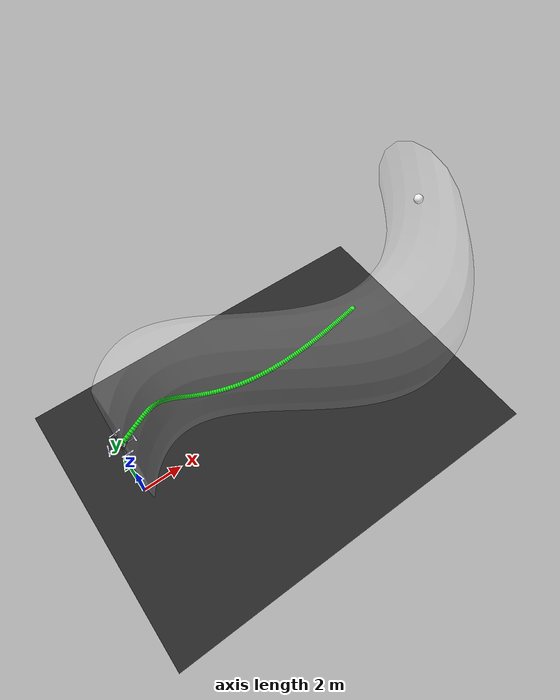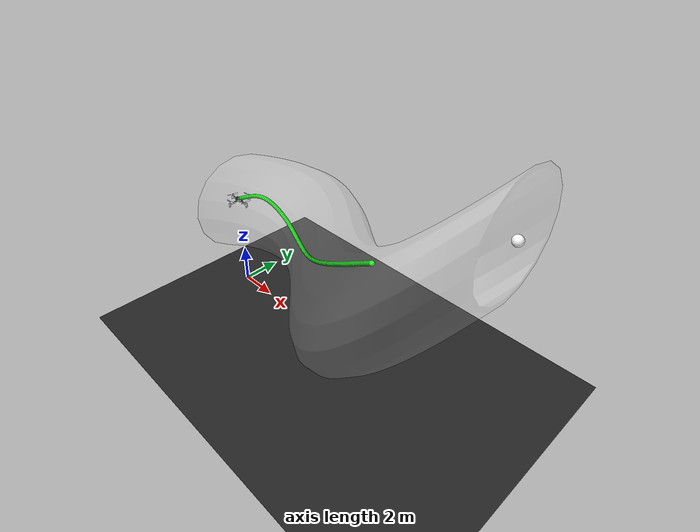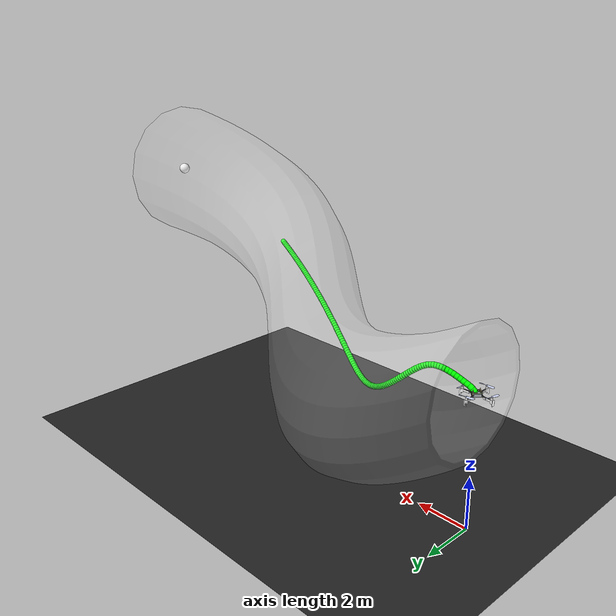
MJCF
<mujoco model="CF2 scene">
  <include file="cf2.xml" />

  <statistic center="0 0 0.1" extent="0.2" meansize=".05" />

  <visual>

    <rgba haze="0.15 0.25 0.35 0" />
    <global azimuth="-20" elevation="-20" ellipsoidinertia="true" />
    <map zfar="1000" />
  </visual>

  <asset>
    <mesh name="tunnel" file="tube_thick.obj" scale="1.0 1.0 1.0" />
    <texture type="skybox" builtin="gradient" rgb1="0.3 0.5 0.7" rgb2="0 0 0" width="512" height="3072" />

    <texture type="2d" name="groundplane" builtin="checker" mark="edge" rgb1="0.1 0.1 0.1" rgb2="0.2 0.2 0.2" markrgb="0.8 0.8 0.8" width="300" height="300" />

    <material name="groundplane" texture="groundplane" texuniform="true" texrepeat="5 5" reflectance="0.0" />
  </asset>

  <worldbody>
    <light diffuse="1 1 1" ambient="1 1 1" pos="0 0 100" dir="0 0 -1" directional="false" castshadow="false" />

    <geom name="floor" size="0 0 0.05" type="plane" material="groundplane" />
    <site name="x_axis" size="0.005" type="cylinder" fromto="0 0 0 1 0 0" rgba="1 0 0 1" />
    <site name="y_axis" size="0.005" type="cylinder" fromto="0 0 0 0 1 0" rgba="0 1 0 1" />
    <site name="z_axis" size="0.005" type="cylinder" fromto="0 0 0 0 0 1" rgba="0 0 1 1" />

    <site name="target" size="0.2" type="sphere" pos="15 0 10" rgba="1 1 1 1" />

    <camera name="cam_aux" pos="-3.429 -18.876 13.649" xyaxes="0.874 -0.486 -0.000 0.179 0.321 0.930" />
    <camera name="cam_traj_1" pos="-7.863 -0.826 23.122" xyaxes="0.020 -1.000 0.000 0.737 0.014 0.676" />
    <camera name="cam_traj_2" pos="7.041 -14.560 20.718" xyaxes="1.000 -0.031 -0.000 0.021 0.691 0.722" />
    <camera name="cam_traj_3" pos="-11.538 -0.602 8.690" xyaxes="0.046 -0.999 -0.000 0.161 0.007 0.987" />

    <body name="tunnel" pos="0.0 0.0 0.0" quat="1 0 0 0">
         <geom name="tunnel" type="mesh" mesh="tunnel" pos="-0.0 0.0 0.029" quat="1 0 0 0" rgba="1 1 1 0.05" />
    </body>

  <body name="trajectory_0" pos="0 0 0"><geom type="capsule" fromto="0.00437318461997022 0.0007496481513081153 5.041824115472996 0.035507787889569806 0.0065076702425278425 5.1121089997573925" size="0.1" rgba="0 1 0.0 1" /><geom type="capsule" fromto="0.035507787889569806 0.0065076702425278425 5.1121089997573925 0.1210112411277036 0.020053517274669783 5.194186137735673" size="0.1" rgba="0 1 0.0 1" /><geom type="capsule" fromto="0.1210112411277036 0.020053517274669783 5.194186137735673 0.24191192169104436 0.038361705149055514 5.269635358225623" size="0.1" rgba="0 1 0.0 1" /><geom type="capsule" fromto="0.24191192169104436 0.038361705149055514 5.269635358225623 0.371237064352328 0.06046459106241012 5.329949473255537" size="0.1" rgba="0 1 0.0 1" /><geom type="capsule" fromto="0.371237064352328 0.06046459106241012 5.329949473255537 0.4960559123805818 0.08575803235701035 5.39042847048231" size="0.1" rgba="0 1 0.0 1" /><geom type="capsule" fromto="0.4960559123805818 0.08575803235701035 5.39042847048231 0.6126201672110702 0.11238564114516242 5.447935754945297" size="0.1" rgba="0 1 0.0 1" /><geom type="capsule" fromto="0.6126201672110702 0.11238564114516242 5.447935754945297 0.7246534858527274 0.13933713829521055 5.500546023519756" size="0.1" rgba="0 1 0.0 1" /><geom type="capsule" fromto="0.7246534858527274 0.13933713829521055 5.500546023519756 0.8343733132124811 0.1663537347999242 5.547736569716039" size="0.1" rgba="0 1 0.0 1" /><geom type="capsule" fromto="0.8343733132124811 0.1663537347999242 5.547736569716039 0.9410720344646984 0.1935353068848628 5.588925691976844" size="0.1" rgba="0 1 0.0 1" /><geom type="capsule" fromto="0.9410720344646984 0.1935353068848628 5.588925691976844 1.0436027114296775 0.221088251164813 5.623661915483553" size="0.1" rgba="0 1 0.0 1" /><geom type="capsule" fromto="1.0436027114296775 0.221088251164813 5.623661915483553 1.1415208374446724 0.24918003639943764 5.65143417859452" size="0.1" rgba="0 1 0.0 1" /><geom type="capsule" fromto="1.1415208374446724 0.24918003639943764 5.65143417859452 1.234771626297441 0.27791061495549507 5.671529936545685" size="0.1" rgba="0 1 0.0 1" /><geom type="capsule" fromto="1.234771626297441 0.27791061495549507 5.671529936545685 1.323379305785619 0.307327491582333 5.6833294686906015" size="0.1" rgba="0 1 0.0 1" /><geom type="capsule" fromto="1.323379305785619 0.307327491582333 5.6833294686906015 1.4074288443399736 0.3374201497584872 5.686475153358069" size="0.1" rgba="0 1 0.0 1" /><geom type="capsule" fromto="1.4074288443399736 0.3374201497584872 5.686475153358069 1.487131799655383 0.36810395500107257 5.680870640505144" size="0.1" rgba="0 1 0.0 1" /><geom type="capsule" fromto="1.487131799655383 0.36810395500107257 5.680870640505144 1.5628358730730079 0.3992172474456516 5.666622760258016" size="0.1" rgba="0 1 0.0 1" /><geom type="capsule" fromto="1.5628358730730079 0.3992172474456516 5.666622760258016 1.6350119538934433 0.4305420072749385 5.6441209133965815" size="0.1" rgba="0 1 0.0 1" /><geom type="capsule" fromto="1.6350119538934433 0.4305420072749385 5.6441209133965815 1.7042877161156027 0.46184551819596065 5.614424281223033" size="0.1" rgba="0 1 0.0 1" /><geom type="capsule" fromto="1.7042877161156027 0.46184551819596065 5.614424281223033 1.771317339765524 0.49288495069435473 5.578819753420225" size="0.1" rgba="0 1 0.0 1" /><geom type="capsule" fromto="1.771317339765524 0.49288495069435473 5.578819753420225 1.8366512493963505 0.5234109300044573 5.5383226369037" size="0.1" rgba="0 1 0.0 1" /><geom type="capsule" fromto="1.8366512493963505 0.5234109300044573 5.5383226369037 1.9007446660616139 0.5531888551284555 5.4937818176106665" size="0.1" rgba="0 1 0.0 1" /><geom type="capsule" fromto="1.9007446660616139 0.5531888551284555 5.4937818176106665 1.963975452457065 0.5820050468092467 5.445931700336022" size="0.1" rgba="0 1 0.0 1" /><geom type="capsule" fromto="1.963975452457065 0.5820050468092467 5.445931700336022 2.0266566119722698 0.6096663593815314 5.3954029030314965" size="0.1" rgba="0 1 0.0 1" /><geom type="capsule" fromto="2.0266566119722698 0.6096663593815314 5.3954029030314965 2.089047277373054 0.6359987975395142 5.342740141638795" size="0.1" rgba="0 1 0.0 1" /><geom type="capsule" fromto="2.089047277373054 0.6359987975395142 5.342740141638795 2.1513615539172495 0.6608456558822791 5.2884174843528555" size="0.1" rgba="0 1 0.0 1" /><geom type="capsule" fromto="2.1513615539172495 0.6608456558822791 5.2884174843528555 2.213775937508471 0.6840655063137996 5.232849785075494" size="0.1" rgba="0 1 0.0 1" /><geom type="capsule" fromto="2.213775937508471 0.6840655063137996 5.232849785075494 2.2764358460537903 0.7055301867489743 5.176401769223376" size="0.1" rgba="0 1 0.0 1" /><geom type="capsule" fromto="2.2764358460537903 0.7055301867489743 5.176401769223376 2.3394613922499325 0.7251228028106721 5.119395539131308" size="0.1" rgba="0 1 0.0 1" /><geom type="capsule" fromto="2.3394613922499325 0.7251228028106721 5.119395539131308 2.402952430536104 0.7427357135498209 5.062117026149087" size="0.1" rgba="0 1 0.0 1" /><geom type="capsule" fromto="2.402952430536104 0.7427357135498209 5.062117026149087 2.4669929102512618 0.7582684624756416 5.004821694491295" size="0.1" rgba="0 1 0.0 1" /><geom type="capsule" fromto="2.4669929102512618 0.7582684624756416 5.004821694491295 2.5316545931243093 0.7716256122341543 4.947739679440857" size="0.1" rgba="0 1 0.0 1" /><geom type="capsule" fromto="2.5316545931243093 0.7716256122341543 4.947739679440857 2.5970002151103486 0.7827144351776266 4.891080486664054" size="0.1" rgba="0 1 0.0 1" /><geom type="capsule" fromto="2.5970002151103486 0.7827144351776266 4.891080486664054 2.6630861845446376 0.7914423996175979 4.83503735787985" size="0.1" rgba="0 1 0.0 1" /><geom type="capsule" fromto="2.6630861845446376 0.7914423996175979 4.83503735787985 2.7299649133509503 0.797714370982354 4.779791405493137" size="0.1" rgba="0 1 0.0 1" /><geom type="capsule" fromto="2.7299649133509503 0.797714370982354 4.779791405493137 2.7976868793336878 0.8014294157437495 4.725515628681751" size="0.1" rgba="0 1 0.0 1" /><geom type="capsule" fromto="2.7976868793336878 0.8014294157437495 4.725515628681751 2.8663024964801775 0.8024795699625173 4.672379013913572" size="0.1" rgba="0 1 0.0 1" /><geom type="capsule" fromto="2.8663024964801775 0.8024795699625173 4.672379013913572 2.935863450519469 0.800788116932673 4.620551452561628" size="0.1" rgba="0 1 0.0 1" /><geom type="capsule" fromto="2.935863450519469 0.800788116932673 4.620551452561628 3.006422797197105 0.7963600003797384 4.5702055132600785" size="0.1" rgba="0 1 0.0 1" /><geom type="capsule" fromto="3.006422797197105 0.7963600003797384 4.5702055132600785 3.0780339691107277 0.7892730419774273 4.521514766460066" size="0.1" rgba="0 1 0.0 1" /><geom type="capsule" fromto="3.0780339691107277 0.7892730419774273 4.521514766460066 3.150749473419002 0.779646751415472 4.4746535216683885" size="0.1" rgba="0 1 0.0 1" /><geom type="capsule" fromto="3.150749473419002 0.779646751415472 4.4746535216683885 3.224620556198447 0.7676106287434328 4.429798274170613" size="0.1" rgba="0 1 0.0 1" /><geom type="capsule" fromto="3.224620556198447 0.7676106287434328 4.429798274170613 3.299698047806389 0.7532826212276539 4.387130431678437" size="0.1" rgba="0 1 0.0 1" /><geom type="capsule" fromto="3.299698047806389 0.7532826212276539 4.387130431678437 3.3760336059942406 0.7367588520405666 4.3468393336436195" size="0.1" rgba="0 1 0.0 1" /><geom type="capsule" fromto="3.3760336059942406 0.7367588520405666 4.3468393336436195 3.4536807431033387 0.718111299658739 4.309124962611168" size="0.1" rgba="0 1 0.0 1" /><geom type="capsule" fromto="3.4536807431033387 0.718111299658739 4.309124962611168 3.5326954855220394 0.6973896713811222 4.274200351065008" size="0.1" rgba="0 1 0.0 1" /><geom type="capsule" fromto="3.5326954855220394 0.6973896713811222 4.274200351065008 3.6131367404775454 0.674624819125306 4.242293887065429" size="0.1" rgba="0 1 0.0 1" /><geom type="capsule" fromto="3.6131367404775454 0.674624819125306 4.242293887065429 3.695066465464729 0.6498322818319753 4.213651669962898" size="0.1" rgba="0 1 0.0 1" /><geom type="capsule" fromto="3.695066465464729 0.6498322818319753 4.213651669962898 3.7785485266968464 0.6230156010294172 4.188536114829531" size="0.1" rgba="0 1 0.0 1" /><geom type="capsule" fromto="3.7785485266968464 0.6230156010294172 4.188536114829531 3.8636223134244765 0.5941735577749006 4.167142180317873" size="0.1" rgba="0 1 0.0 1" /><geom type="capsule" fromto="3.8636223134244765 0.5941735577749006 4.167142180317873 3.950288227969581 0.5633064156249414 4.14955626414783" size="0.1" rgba="0 1 0.0 1" /><geom type="capsule" fromto="3.950288227969581 0.5633064156249414 4.14955626414783 4.038536984676037 0.53041716649107 4.135861997675917" size="0.1" rgba="0 1 0.0 1" /><geom type="capsule" fromto="4.038536984676037 0.53041716649107 4.135861997675917 4.128352709302968 0.49551938306605986 4.12616066314445" size="0.1" rgba="0 1 0.0 1" /><geom type="capsule" fromto="4.128352709302968 0.49551938306605986 4.12616066314445 4.21970375299119 0.45864700663116525 4.120550632229399" size="0.1" rgba="0 1 0.0 1" /><geom type="capsule" fromto="4.21970375299119 0.45864700663116525 4.120550632229399 4.312536504282794 0.41986212912277415 4.119113669226877" size="0.1" rgba="0 1 0.0 1" /><geom type="capsule" fromto="4.312536504282794 0.41986212912277415 4.119113669226877 4.406770747044694 0.3792612538771082 4.12190240263572" size="0.1" rgba="0 1 0.0 1" /><geom type="capsule" fromto="4.406770747044694 0.3792612538771082 4.12190240263572 4.5022968687379885 0.3369796767885485 4.128928499504876" size="0.1" rgba="0 1 0.0 1" /><geom type="capsule" fromto="4.5022968687379885 0.3369796767885485 4.128928499504876 4.598975907131344 0.29319292641473194 4.140153487893752" size="0.1" rgba="0 1 0.0 1" /><geom type="capsule" fromto="4.598975907131344 0.29319292641473194 4.140153487893752 4.6966429712028 0.24811420255442662 4.15548413528755" size="0.1" rgba="0 1 0.0 1" /><geom type="capsule" fromto="4.6966429712028 0.24811420255442662 4.15548413528755 4.795113866623792 0.2019873746921961 4.174773408232686" size="0.1" rgba="0 1 0.0 1" /><geom type="capsule" fromto="4.795113866623792 0.2019873746921961 4.174773408232686 4.894194071429243 0.15507611809804034 4.1978270272251965" size="0.1" rgba="0 1 0.0 1" /><geom type="capsule" fromto="4.894194071429243 0.15507611809804034 4.1978270272251965 4.993688519007771 0.10765082966444853 4.224414361981719" size="0.1" rgba="0 1 0.0 1" /><geom type="capsule" fromto="4.993688519007771 0.10765082966444853 4.224414361981719 5.0934104257584405 0.05997569990425653 4.254281277263567" size="0.1" rgba="0 1 0.0 1" /><geom type="capsule" fromto="5.0934104257584405 0.05997569990425653 4.254281277263567 5.193187826902025 0.012298010385167986 4.2871622188729965" size="0.1" rgba="0 1 0.0 1" /><geom type="capsule" fromto="5.193187826902025 0.012298010385167986 4.2871622188729965 5.29286743248457 -0.03515933798533391 4.322790089962683" size="0.1" rgba="0 1 0.0 1" /><geom type="capsule" fromto="5.29286743248457 -0.03515933798533391 4.322790089962683 5.392316132909675 -0.0822019411914488 4.360903633638507" size="0.1" rgba="0 1 0.0 1" /><geom type="capsule" fromto="5.392316132909675 -0.0822019411914488 4.360903633638507 5.491420742825816 -0.1286651198425606 4.4012523881226695" size="0.1" rgba="0 1 0.0 1" /><geom type="capsule" fromto="5.491420742825816 -0.1286651198425606 4.4012523881226695 5.590086652242905 -0.1744130441980158 4.443599698990014" size="0.1" rgba="0 1 0.0 1" /><geom type="capsule" fromto="5.590086652242905 -0.1744130441980158 4.443599698990014 5.688235925822523 -0.2193365527578659 4.487724343922756" size="0.1" rgba="0 1 0.0 1" /><geom type="capsule" fromto="5.688235925822523 -0.2193365527578659 4.487724343922756 5.785805206813993 -0.2633503006664429 4.533421194337305" size="0.1" rgba="0 1 0.0 1" /><geom type="capsule" fromto="5.785805206813993 -0.2633503006664429 4.533421194337305 5.882743640989074 -0.30638967843176695 4.580501216637712" size="0.1" rgba="0 1 0.0 1" /><geom type="capsule" fromto="5.882743640989074 -0.30638967843176695 4.580501216637712 5.979010941289136 -0.3484077757589116 4.628791028480523" size="0.1" rgba="0 1 0.0 1" /><geom type="capsule" fromto="5.979010941289136 -0.3484077757589116 4.628791028480523 6.074575652661751 -0.38937254732029725 4.67813216734252" size="0.1" rgba="0 1 0.0 1" /><geom type="capsule" fromto="6.074575652661751 -0.38937254732029725 4.67813216734252 6.16941363762709 -0.4292642598825974 4.728380188212185" size="0.1" rgba="0 1 0.0 1" /><geom type="capsule" fromto="6.16941363762709 -0.4292642598825974 4.728380188212185 6.263506779479324 -0.4680732509246699 4.779403675408562" size="0.1" rgba="0 1 0.0 1" /><geom type="capsule" fromto="6.263506779479324 -0.4680732509246699 4.779403675408562 6.356841887190102 -0.5057979982576818 4.831083228088039" size="0.1" rgba="0 1 0.0 1" /><geom type="capsule" fromto="6.356841887190102 -0.5057979982576818 4.831083228088039 6.449409780256615 -0.5424434821645798 4.8833104594360774" size="0.1" rgba="0 1 0.0 1" /><geom type="capsule" fromto="6.449409780256615 -0.5424434821645798 4.8833104594360774 6.541204530021944 -0.5780198122027072 4.9359870351244055" size="0.1" rgba="0 1 0.0 1" /><geom type="capsule" fromto="6.541204530021944 -0.5780198122027072 4.9359870351244055 6.632222834561533 -0.6125410871286601 4.989023766340185" size="0.1" rgba="0 1 0.0 1" /><geom type="capsule" fromto="6.632222834561533 -0.6125410871286601 4.989023766340185 6.72246350602255 -0.6460244562297706 5.042339765545088" size="0.1" rgba="0 1 0.0 1" /><geom type="capsule" fromto="6.72246350602255 -0.6460244562297706 5.042339765545088 6.811927051679955 -0.6784893521579255 5.095861668248308" size="0.1" rgba="0 1 0.0 1" /><geom type="capsule" fromto="6.811927051679955 -0.6784893521579255 5.095861668248308 6.900615332513691 -0.7099568681693089 5.149522920830001" size="0.1" rgba="0 1 0.0 1" /><geom type="capsule" fromto="6.900615332513691 -0.7099568681693089 5.149522920830001 6.988531285557377 -0.740449255869689 5.2032631323563665" size="0.1" rgba="0 1 0.0 1" /><geom type="capsule" fromto="6.988531285557377 -0.740449255869689 5.2032631323563665 7.075678698490011 -0.7699895227879838 5.257027487043712" size="0.1" rgba="0 1 0.0 1" /><geom type="capsule" fromto="7.075678698490011 -0.7699895227879838 5.257027487043712 7.162062026891838 -0.7986011121461137 5.310766213311224" size="0.1" rgba="0 1 0.0 1" /><geom type="capsule" fromto="7.162062026891838 -0.7986011121461137 5.310766213311224 7.247686246260514 -0.8263076499552571 5.364434105033382" size="0.1" rgba="0 1 0.0 1" /><geom type="capsule" fromto="7.247686246260514 -0.8263076499552571 5.364434105033382 7.332556732299516 -0.8531327470048441 5.417990090534727" size="0.1" rgba="0 1 0.0 1" /><geom type="capsule" fromto="7.332556732299516 -0.8531327470048441 5.417990090534727 7.416679164167856 -0.8790998454124984 5.471396844971335" size="0.1" rgba="0 1 0.0 1" /><geom type="capsule" fromto="7.416679164167856 -0.8790998454124984 5.471396844971335 7.5000594463739745 -0.9042321012092869 5.52462044194408" size="0.1" rgba="0 1 0.0 1" /><geom type="capsule" fromto="7.5000594463739745 -0.9042321012092869 5.52462044194408 7.582703645810666 -0.92855229596219 5.577630040454724" size="0.1" rgba="0 1 0.0 1" /><geom type="capsule" fromto="7.582703645810666 -0.92855229596219 5.577630040454724 7.664617941073722 -0.9520827716979395 5.630397603619142" size="0.1" rgba="0 1 0.0 1" /><geom type="capsule" fromto="7.664617941073722 -0.9520827716979395 5.630397603619142 7.745808581735534 -0.9748453844384021 5.682897645852746" size="0.1" rgba="0 1 0.0 1" /><geom type="capsule" fromto="7.745808581735534 -0.9748453844384021 5.682897645852746 7.8262818556863465 -0.9968614725285208 5.735107005537971" size="0.1" rgba="0 1 0.0 1" /><geom type="capsule" fromto="7.8262818556863465 -0.9968614725285208 5.735107005537971 7.906044063017469 -1.0181518366572235 5.787004640476394" size="0.1" rgba="0 1 0.0 1" /><geom type="capsule" fromto="7.906044063017469 -1.0181518366572235 5.787004640476394 7.985101495210981 -1.038736729061911 5.838571443702417" size="0.1" rgba="0 1 0.0 1" /><geom type="capsule" fromto="7.985101495210981 -1.038736729061911 5.838571443702417 8.06346041863315 -1.0586358498894248 5.889790077485702" size="0.1" rgba="0 1 0.0 1" /><geom type="capsule" fromto="8.06346041863315 -1.0586358498894248 5.889790077485702 8.141127061517134 -1.0778683490798149 5.9406448235788405" size="0.1" rgba="0 1 0.0 1" /><geom type="capsule" fromto="8.141127061517134 -1.0778683490798149 5.9406448235788405 8.218107603773715 -1.0964528324596459 5.991121447975884" size="0.1" rgba="0 1 0.0 1" /><geom type="capsule" fromto="8.218107603773715 -1.0964528324596459 5.991121447975884 8.29440816909323 -1.1144073709922 6.041207078636496" size="0.1" rgba="0 1 0.0 1" /><geom type="capsule" fromto="8.29440816909323 -1.1144073709922 6.041207078636496 8.370034818902544 -1.1317495123435715 6.090890094800454" size="0.1" rgba="0 1 0.0 1" /><geom type="capsule" fromto="8.370034818902544 -1.1317495123435715 6.090890094800454 8.444993547822593 -1.148496294095308 6.140160026669218" size="0.1" rgba="0 1 0.0 1" /><geom type="capsule" fromto="8.444993547822593 -1.148496294095308 6.140160026669218 8.5192902803382 -1.164664258073265 6.189007464367052" size="0.1" rgba="0 1 0.0 1" /><geom type="capsule" fromto="8.5192902803382 -1.164664258073265 6.189007464367052 8.592930868445604 -1.1802694653747567 6.237423975214935" size="0.1" rgba="0 1 0.0 1" /><geom type="capsule" fromto="8.592930868445604 -1.1802694653747567 6.237423975214935 8.665921090086814 -1.1953275117668498 6.28540202845797" size="0.1" rgba="0 1 0.0 1" /><geom type="capsule" fromto="8.665921090086814 -1.1953275117668498 6.28540202845797 8.738266648215419 -1.2098535432017798 6.3329349266822685" size="0.1" rgba="0 1 0.0 1" /><geom type="capsule" fromto="8.738266648215419 -1.2098535432017798 6.3329349266822685 8.809973170367384 -1.2238622712543101 6.380016743241852" size="0.1" rgba="0 1 0.0 1" /><geom type="capsule" fromto="8.809973170367384 -1.2238622712543101 6.380016743241852 8.881046208633844 -1.2373679883330515 6.4266422650909725" size="0.1" rgba="0 1 0.0 1" /><geom type="capsule" fromto="8.881046208633844 -1.2373679883330515 6.4266422650909725 8.951491239952109 -1.2503845825555335 6.472806940483588" size="0.1" rgba="0 1 0.0 1" /><geom type="capsule" fromto="8.951491239952109 -1.2503845825555335 6.472806940483588 9.021313666646712 -1.2629255522069496 6.518506831060461" size="0.1" rgba="0 1 0.0 1" /><geom type="capsule" fromto="9.021313666646712 -1.2629255522069496 6.518506831060461 9.090518817165103 -1.2750040197264325 6.563738567896308" size="0.1" rgba="0 1 0.0 1" /><geom type="capsule" fromto="9.090518817165103 -1.2750040197264325 6.563738567896308 9.159111946962982 -1.2866327451836492 6.608499311125492" size="0.1" rgba="0 1 0.0 1" /><geom type="capsule" fromto="9.159111946962982 -1.2866327451836492 6.608499311125492 9.227098239502814 -1.2978241392233922 6.652786712805495" size="0.1" rgba="0 1 0.0 1" /><geom type="capsule" fromto="9.227098239502814 -1.2978241392233922 6.652786712805495 9.294482807336022 -1.3085902754674745 6.696598882713528" size="0.1" rgba="0 1 0.0 1" /><geom type="capsule" fromto="9.294482807336022 -1.3085902754674745 6.696598882713528 9.361270693245057 -1.318942902372241 6.739934356803636" size="0.1" rgba="0 1 0.0 1" /><geom type="capsule" fromto="9.361270693245057 -1.318942902372241 6.739934356803636 9.42746687142619 -1.3288934545469147 6.78279206808007" size="0.1" rgba="0 1 0.0 1" /><geom type="capsule" fromto="9.42746687142619 -1.3288934545469147 6.78279206808007 9.493076248697742 -1.3384530635432128 6.82517131966785" size="0.1" rgba="0 1 0.0 1" /><geom type="capsule" fromto="9.493076248697742 -1.3384530635432128 6.82517131966785 9.558103665721532 -1.3476325681305386 6.867071759883844" size="0.1" rgba="0 1 0.0 1" /><geom type="capsule" fromto="9.558103665721532 -1.3476325681305386 6.867071759883844 9.62255389822795 -1.3564425240738611 6.908493359131567" size="0.1" rgba="0 1 0.0 1" /><geom type="capsule" fromto="9.62255389822795 -1.3564425240738611 6.908493359131567 9.686431658237098 -1.3648932134333478 6.949436388460578" size="0.1" rgba="0 1 0.0 1" /><geom type="capsule" fromto="9.686431658237098 -1.3648932134333478 6.949436388460578 9.749741595270198 -1.3729946534061015 6.9899013996471195" size="0.1" rgba="0 1 0.0 1" /><geom type="capsule" fromto="9.749741595270198 -1.3729946534061015 6.9899013996471195 9.812488297546862 -1.3807566047311142 7.029889206666678" size="0.1" rgba="0 1 0.0 1" /><geom type="capsule" fromto="9.812488297546862 -1.3807566047311142 7.029889206666678 9.874676293164915 -1.3881885796789029 7.06940086844167" size="0.1" rgba="0 1 0.0 1" /><geom type="capsule" fromto="9.874676293164915 -1.3881885796789029 7.06940086844167 9.936310051260447 -1.3952998496473248 7.108437672758633" size="0.1" rgba="0 1 0.0 1" /><geom type="capsule" fromto="9.936310051260447 -1.3952998496473248 7.108437672758633 9.997393983146473 -1.4020994523848616 7.147001121259347" size="0.1" rgba="0 1 0.0 1" /><geom type="capsule" fromto="9.997393983146473 -1.4020994523848616 7.147001121259347 10.057932443429216 -1.408596198862266 7.18509291541921" size="0.1" rgba="0 1 0.0 1" /><geom type="capsule" fromto="10.057932443429216 -1.408596198862266 7.18509291541921 10.117929731101471 -1.414798679812931 7.222714943434272" size="0.1" rgba="0 1 0.0 1" /><geom type="capsule" fromto="10.117929731101471 -1.414798679812931 7.222714943434272 10.177390090612935 -1.4207152719617049 7.25986926794551" size="0.1" rgba="0 1 0.0 1" /><geom type="capsule" fromto="10.177390090612935 -1.4207152719617049 7.25986926794551 10.236317712917652 -1.426354143961166 7.296558114535405" size="0.1" rgba="0 1 0.0 1" /><geom type="capsule" fromto="10.236317712917652 -1.426354143961166 7.296558114535405 10.294716736498975 -1.4317232620536102 7.332783860937695" size="0.1" rgba="0 1 0.0 1" /><geom type="capsule" fromto="10.294716736498975 -1.4317232620536102 7.332783860937695 10.352591248372622 -1.4368303954762092 7.368549026906446" size="0.1" rgba="0 1 0.0 1" /><geom type="capsule" fromto="10.352591248372622 -1.4368303954762092 7.368549026906446 10.409945285068513 -1.4416831216259842 7.4038562646952775" size="0.1" rgba="0 1 0.0 1" /><geom type="capsule" fromto="10.409945285068513 -1.4416831216259842 7.4038562646952775 10.466782833592193 -1.446288831000418 7.4387083501018765" size="0.1" rgba="0 1 0.0 1" /><geom type="capsule" fromto="10.466782833592193 -1.446288831000418 7.4387083501018765 10.5231078323667 -1.4506547319287055 7.473108174036766" size="0.1" rgba="0 1 0.0 1" /></body></worldbody>

  <contact>
    <exclude name="cf2_tunnel" body1="cf2" body2="tunnel" />
  </contact>

</mujoco>

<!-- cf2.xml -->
<mujoco model="cf2">
  <option integrator="RK4" density="1.225" viscosity="1.8e-5" timestep="0.1"/>

  <compiler inertiafromgeom="false" meshdir="assets" autolimits="true"/>

  <default>
    <default class="cf2">
      <default class="visual">
        <geom group="2" type="mesh" contype="0" conaffinity="0"/>
      </default>
      <default class="collision">
        <geom group="3" type="mesh"/>
      </default>
      <site group="5"/>
    </default>
  </default>

  <asset>
    <material name="polished_plastic" rgba="0.631 0.659 0.678 1"/>
    <material name="polished_gold" rgba="0.969 0.878 0.6 1"/>
    <material name="medium_gloss_plastic" rgba="0.109 0.184 0.0 1"/>
    <material name="propeller_plastic" rgba="0.792 0.820 0.933 1"/>
    <material name="white" rgba="1 1 1 1"/>
    <material name="body_frame_plastic" rgba="0.102 0.102 0.102 1"/>
    <material name="burnished_chrome" rgba="0.898 0.898 0.898 1"/>

    <mesh file="cf2_0.obj"/>
    <mesh file="cf2_1.obj"/>
    <mesh file="cf2_2.obj"/>
    <mesh file="cf2_3.obj"/>
    <mesh file="cf2_4.obj"/>
    <mesh file="cf2_5.obj"/>
    <mesh file="cf2_6.obj"/>
    <mesh file="cf2_collision_0.obj"/>
    <mesh file="cf2_collision_1.obj"/>
    <mesh file="cf2_collision_2.obj"/>
    <mesh file="cf2_collision_3.obj"/>
    <mesh file="cf2_collision_4.obj"/>
    <mesh file="cf2_collision_5.obj"/>
    <mesh file="cf2_collision_6.obj"/>
    <mesh file="cf2_collision_7.obj"/>
    <mesh file="cf2_collision_8.obj"/>
    <mesh file="cf2_collision_9.obj"/>
    <mesh file="cf2_collision_10.obj"/>
    <mesh file="cf2_collision_11.obj"/>
    <mesh file="cf2_collision_12.obj"/>
    <mesh file="cf2_collision_13.obj"/>
    <mesh file="cf2_collision_14.obj"/>
    <mesh file="cf2_collision_15.obj"/>
    <mesh file="cf2_collision_16.obj"/>
    <mesh file="cf2_collision_17.obj"/>
    <mesh file="cf2_collision_18.obj"/>
    <mesh file="cf2_collision_19.obj"/>
    <mesh file="cf2_collision_20.obj"/>
    <mesh file="cf2_collision_21.obj"/>
    <mesh file="cf2_collision_22.obj"/>
    <mesh file="cf2_collision_23.obj"/>
    <mesh file="cf2_collision_24.obj"/>
    <mesh file="cf2_collision_25.obj"/>
    <mesh file="cf2_collision_26.obj"/>
    <mesh file="cf2_collision_27.obj"/>
    <mesh file="cf2_collision_28.obj"/>
    <mesh file="cf2_collision_29.obj"/>
    <mesh file="cf2_collision_30.obj"/>
    <mesh file="cf2_collision_31.obj"/>
  </asset>

  <worldbody>
    <body name="cf2" pos="0 0.0 5.0" childclass="cf2">
      <freejoint/>
      <inertial pos="0 0 0" mass="0.1" diaginertia="1e-2 1e-2 1e-2"/>
      <camera name="track_cf2" pos="-10  0 1" fovy="60" xyaxes="0 -1 0 0 0 1" mode="trackcom"/>
      <geom mesh="cf2_0" material="propeller_plastic" class="visual"/>
      <geom mesh="cf2_1" material="medium_gloss_plastic" class="visual"/>
      <geom mesh="cf2_2" material="polished_gold" class="visual"/>
      <geom mesh="cf2_3" material="polished_plastic" class="visual"/>
      <geom mesh="cf2_4" material="burnished_chrome" class="visual"/>
      <geom mesh="cf2_5" material="body_frame_plastic" class="visual"/>
      <geom mesh="cf2_6" material="white" class="visual"/>
      <geom mesh="cf2_collision_0" class="collision"/>
      <geom mesh="cf2_collision_1" class="collision"/>
      <geom mesh="cf2_collision_2" class="collision"/>
      <geom mesh="cf2_collision_3" class="collision"/>
      <geom mesh="cf2_collision_4" class="collision"/>
      <geom mesh="cf2_collision_5" class="collision"/>
      <geom mesh="cf2_collision_6" class="collision"/>
      <geom mesh="cf2_collision_7" class="collision"/>
      <geom mesh="cf2_collision_8" class="collision"/>
      <geom mesh="cf2_collision_9" class="collision"/>
      <geom mesh="cf2_collision_10" class="collision"/>
      <geom mesh="cf2_collision_11" class="collision"/>
      <geom mesh="cf2_collision_12" class="collision"/>
      <geom mesh="cf2_collision_13" class="collision"/>
      <geom mesh="cf2_collision_14" class="collision"/>
      <geom mesh="cf2_collision_15" class="collision"/>
      <geom mesh="cf2_collision_16" class="collision"/>
      <geom mesh="cf2_collision_17" class="collision"/>
      <geom mesh="cf2_collision_18" class="collision"/>
      <geom mesh="cf2_collision_19" class="collision"/>
      <geom mesh="cf2_collision_20" class="collision"/>
      <geom mesh="cf2_collision_21" class="collision"/>
      <geom mesh="cf2_collision_22" class="collision"/>
      <geom mesh="cf2_collision_23" class="collision"/>
      <geom mesh="cf2_collision_24" class="collision"/>
      <geom mesh="cf2_collision_25" class="collision"/>
      <geom mesh="cf2_collision_26" class="collision"/>
      <geom mesh="cf2_collision_27" class="collision"/>
      <geom mesh="cf2_collision_28" class="collision"/>
      <geom mesh="cf2_collision_29" class="collision"/>
      <geom mesh="cf2_collision_30" class="collision"/>
      <geom mesh="cf2_collision_31" class="collision"/>
      <site name="imu"/>
      <site name="actuation"/>
    </body>
  </worldbody>

  <actuator>
    <motor class="cf2" gear="0 0 1 0 0 0" site="actuation" name="body_thrust"/>
    <motor class="cf2" gear="0 0 0 1 0 0" site="actuation" name="x_moment"/>
    <motor class="cf2" gear="0 0 0 0 1 0" site="actuation" name="y_moment"/>
    <motor class="cf2" gear="0 0 0 0 0 1" site="actuation" name="z_moment"/>
  </actuator>

  <sensor>
    <gyro name="body_gyro" site="imu"/>
    <accelerometer name="body_linacc" site="imu"/>
    <framequat name="body_quat" objtype="site" objname="imu"/>
  </sensor>

  <keyframe>
    <key name="hover" qpos="0 0 0.1 1 0 0 0" ctrl="0.26487 0 0 0"/>
  </keyframe>
</mujoco>
